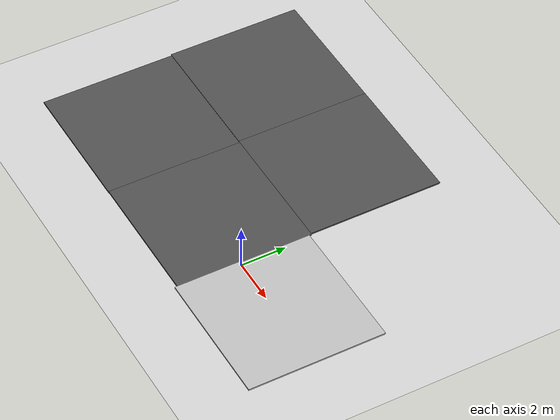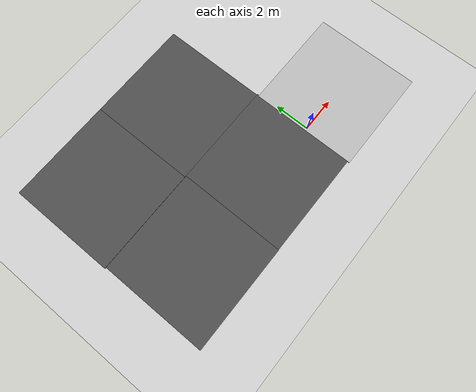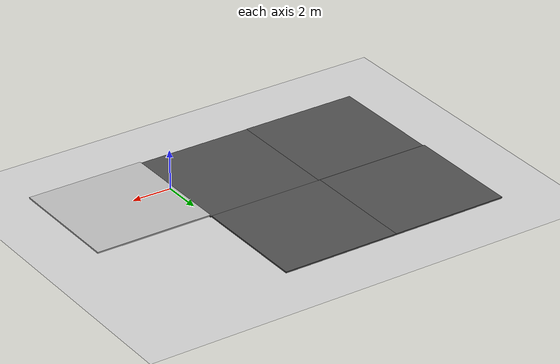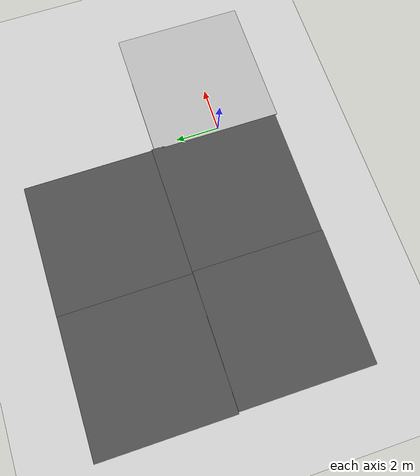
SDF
<sdf version="1.7">
 <world name="default">
  <model name="ground_plane">
   <static>1</static>
   <link name="link">
    <collision name="collision">
     <geometry><plane><normal>0 0 1</normal><size>100 100</size></plane></geometry>
     <surface>
      <contact><collide_bitmask>65535</collide_bitmask></contact>
      <friction><ode><mu>100</mu><mu2>50</mu2></ode></friction>
     </surface>
    </collision>
    <visual name="visual">
     <cast_shadows>0</cast_shadows>
     <geometry><plane><normal>0 0 1</normal><size>100 100</size></plane></geometry>
     <material>
      <script><uri>file://media/materials/scripts/gazebo.material</uri><name>Gazebo/Grey</name></script>
     </material>
    </visual>
   </link>
  </model>
  <light name="sun" type="directional">
   <pose>0 0 10 0 -0 0</pose>
   <diffuse>0.8 0.8 0.8 1</diffuse>
   <specular>0.2 0.2 0.2 1</specular>
   <attenuation>
    <range>1000</range>
    <constant>0.9</constant>
    <linear>0.01</linear>
    <quadratic>0.001</quadratic>
   </attenuation>
   <direction>-0.5 0.1 -0.9</direction>
   <spot><inner_angle>0</inner_angle><outer_angle>0</outer_angle><falloff>0</falloff></spot>
  </light>
  <scene><shadows>0</shadows><ambient>0.4 0.4 0.4 1</ambient><background>0.7 0.7 0.7 1</background></scene>
  <physics type="ode">
   <real_time_update_rate>1000</real_time_update_rate>
   <max_step_size>0.001</max_step_size>
   <real_time_factor>1</real_time_factor>
   <ode>
    <solver>
     <type>quick</type>
     <iters>150</iters>
     <precon_iters>0</precon_iters>
     <sor>1.4</sor>
     <use_dynamic_moi_rescaling>1</use_dynamic_moi_rescaling>
    </solver>
    <constraints>
     <cfm>1e-05</cfm>
     <erp>0.2</erp>
     <contact_max_correcting_vel>2000</contact_max_correcting_vel>
     <contact_surface_layer>0.01</contact_surface_layer>
    </constraints>
   </ode>
  </physics>
  <gravity>0 0 -9.8</gravity>
  <magnetic_field>6e-06 2.3e-05 -4.2e-05</magnetic_field>
  <atmosphere type="adiabatic"/>
  <audio><device>default</device></audio>
  <spherical_coordinates>
   <surface_model>EARTH_WGS84</surface_model>
   <latitude_deg>0</latitude_deg>
   <longitude_deg>0</longitude_deg>
   <elevation>0</elevation>
   <heading_deg>0</heading_deg>
  </spherical_coordinates>
  <model name="road_plane_without_marks">
   <static>1</static>
   <link name="link">
    <collision name="collision"><geometry><box><size>6 6 0.1</size></box></geometry></collision>
    <visual name="visual">
     <cast_shadows>0</cast_shadows>
     <geometry><box><size>6 6 0.1</size></box></geometry>
     <material>
      <script>
       <uri>model://road_plane_without_marks/materials/scripts</uri>
       <uri>model://road_plane_without_marks/materials/textures</uri>
       <name>vrc/road_no_m</name>
      </script>
     </material>
    </visual>
   </link>
   <pose>-9.07772 0.229719 0 0 -0 0</pose>
  </model>
  <model name="road_plane_without_marks_0">
   <static>1</static>
   <link name="link">
    <collision name="collision"><geometry><box><size>6 6 0.1</size></box></geometry></collision>
    <visual name="visual">
     <cast_shadows>0</cast_shadows>
     <geometry><box><size>6 6 0.1</size></box></geometry>
     <material>
      <script>
       <uri>model://road_plane_without_marks/materials/scripts</uri>
       <uri>model://road_plane_without_marks/materials/textures</uri>
       <name>vrc/road_no_m</name>
      </script>
     </material>
    </visual>
   </link>
   <pose>-3.10599 0.247607 0 0 -0 0</pose>
  </model>
  <model name="road_diag">
   <static>1</static>
   <link name="link">
    <collision name="collision"><geometry><box><size>6 6 0.1</size></box></geometry></collision>
    <visual name="visual">
     <cast_shadows>0</cast_shadows>
     <geometry><box><size>6 6 0.1</size></box></geometry>
     <material>
      <script>
       <uri>model://road_diag/materials/scripts</uri>
       <uri>model://road_diag/materials/textures</uri>
       <name>vrc/diag</name>
      </script>
     </material>
    </visual>
   </link>
   <pose>2.83329 0.138692 0 0 -0 0</pose>
  </model>
  <model name="road_plane_without_marks_1">
   <static>1</static>
   <link name="link">
    <collision name="collision"><geometry><box><size>6 6 0.1</size></box></geometry></collision>
    <visual name="visual">
     <cast_shadows>0</cast_shadows>
     <geometry><box><size>6 6 0.1</size></box></geometry>
     <material>
      <script>
       <uri>model://road_plane_without_marks/materials/scripts</uri>
       <uri>model://road_plane_without_marks/materials/textures</uri>
       <name>vrc/road_no_m</name>
      </script>
     </material>
    </visual>
   </link>
   <pose>-3.16028 6.24158 0 0 -0 0</pose>
  </model>
  <model name="road_plane_without_marks_2">
   <static>1</static>
   <link name="link">
    <collision name="collision"><geometry><box><size>6 6 0.1</size></box></geometry></collision>
    <visual name="visual">
     <cast_shadows>0</cast_shadows>
     <geometry><box><size>6 6 0.1</size></box></geometry>
     <material>
      <script>
       <uri>model://road_plane_without_marks/materials/scripts</uri>
       <uri>model://road_plane_without_marks/materials/textures</uri>
       <name>vrc/road_no_m</name>
      </script>
     </material>
    </visual>
   </link>
   <pose>-9.15333 6.24035 0 0 -0 0</pose>
  </model>
 </world>
</sdf>
